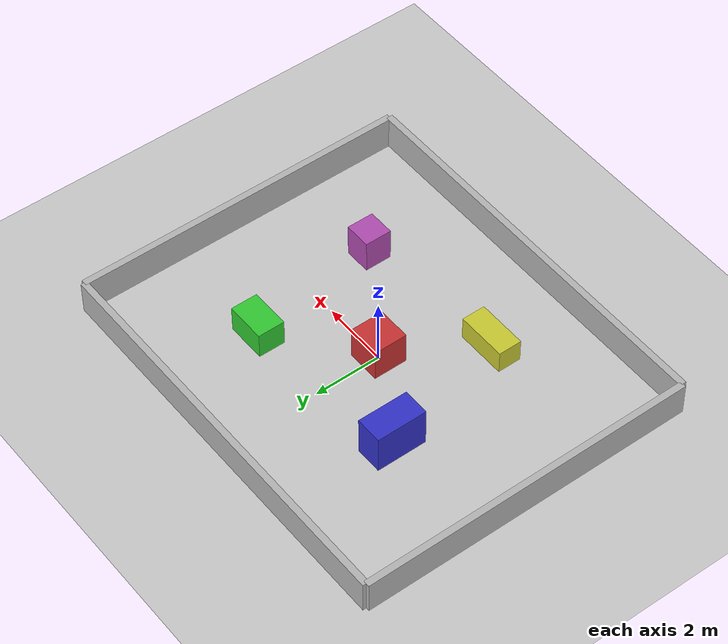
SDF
<?xml version="1.0" ?>
<sdf version="1.6">
  <world name="simple_obstacle_world">

    <include>
      <uri>model://ground_plane</uri>
    </include>

    <include>
      <uri>model://sun</uri>
    </include>

    <!-- 四周边界墙 -->
    <model name="wall_north">
      <static>true</static>
      <pose>0 5 0.5 0 0 0</pose>
      <link name="link">
        <collision name="collision">
          <geometry>
            <box>
              <size>12 0.2 1.0</size>
            </box>
          </geometry>
        </collision>
        <visual name="visual">
          <geometry>
            <box>
              <size>12 0.2 1.0</size>
            </box>
          </geometry>
        </visual>
      </link>
    </model>

    <model name="wall_south">
      <static>true</static>
      <pose>0 -5 0.5 0 0 0</pose>
      <link name="link">
        <collision name="collision">
          <geometry>
            <box>
              <size>12 0.2 1.0</size>
            </box>
          </geometry>
        </collision>
        <visual name="visual">
          <geometry>
            <box>
              <size>12 0.2 1.0</size>
            </box>
          </geometry>
        </visual>
      </link>
    </model>

    <model name="wall_east">
      <static>true</static>
      <pose>6 0 0.5 0 0 0</pose>
      <link name="link">
        <collision name="collision">
          <geometry>
            <box>
              <size>0.2 10 1.0</size>
            </box>
          </geometry>
        </collision>
        <visual name="visual">
          <geometry>
            <box>
              <size>0.2 10 1.0</size>
            </box>
          </geometry>
        </visual>
      </link>
    </model>

    <model name="wall_west">
      <static>true</static>
      <pose>-6 0 0.5 0 0 0</pose>
      <link name="link">
        <collision name="collision">
          <geometry>
            <box>
              <size>0.2 10 1.0</size>
            </box>
          </geometry>
        </collision>
        <visual name="visual">
          <geometry>
            <box>
              <size>0.2 10 1.0</size>
            </box>
          </geometry>
        </visual>
      </link>
    </model>

    <!-- 障碍物 1 -->
    <model name="box_1">
      <static>true</static>
      <pose>0 0 0.5 0 0 0</pose>
      <link name="link">
        <collision name="collision">
          <geometry>
            <box>
              <size>1.0 1.0 1.0</size>
            </box>
          </geometry>
        </collision>
        <visual name="visual">
          <geometry>
            <box>
              <size>1.0 1.0 1.0</size>
            </box>
          </geometry>
          <material>
            <ambient>0.8 0.2 0.2 1</ambient>
            <diffuse>0.8 0.2 0.2 1</diffuse>
          </material>
        </visual>
      </link>
    </model>

    <!-- 障碍物 2 -->
    <model name="box_2">
      <static>true</static>
      <pose>2.5 2 0.4 0 0 0</pose>
      <link name="link">
        <collision name="collision">
          <geometry>
            <box>
              <size>1.2 0.8 0.8</size>
            </box>
          </geometry>
        </collision>
        <visual name="visual">
          <geometry>
            <box>
              <size>1.2 0.8 0.8</size>
            </box>
          </geometry>
          <material>
            <ambient>0.2 0.8 0.2 1</ambient>
            <diffuse>0.2 0.8 0.2 1</diffuse>
          </material>
        </visual>
      </link>
    </model>

    <!-- 障碍物 3 -->
    <model name="box_3">
      <static>true</static>
      <pose>-2.5 1.5 0.6 0 0 0</pose>
      <link name="link">
        <collision name="collision">
          <geometry>
            <box>
              <size>0.8 1.5 1.2</size>
            </box>
          </geometry>
        </collision>
        <visual name="visual">
          <geometry>
            <box>
              <size>0.8 1.5 1.2</size>
            </box>
          </geometry>
          <material>
            <ambient>0.2 0.2 0.8 1</ambient>
            <diffuse>0.2 0.2 0.8 1</diffuse>
          </material>
        </visual>
      </link>
    </model>
    <!-- 障碍物 4 -->
    <model name="box_4">
      <static>true</static>
      <pose>-1.5 -2.5 0.35 0 0 0</pose>
      <link name="link">
        <collision name="collision">
          <geometry>
            <box>
              <size>1.5 0.7 0.7</size>
            </box>
          </geometry>
        </collision>
        <visual name="visual">
          <geometry>
            <box>
              <size>1.5 0.7 0.7</size>
            </box>
          </geometry>
          <material>
            <ambient>0.8 0.8 0.2 1</ambient>
            <diffuse>0.8 0.8 0.2 1</diffuse>
          </material>
        </visual>
      </link>
    </model>

    <!-- 障碍物 5 -->
    <model name="box_5">
      <static>true</static>
      <pose>3 -2 0.5 0 0 0</pose>
      <link name="link">
        <collision name="collision">
          <geometry>
            <box>
              <size>0.8 0.8 1.0</size>
            </box>
          </geometry>
        </collision>
        <visual name="visual">
          <geometry>
            <box>
              <size>0.8 0.8 1.0</size>
            </box>
          </geometry>
          <material>
            <ambient>0.7 0.3 0.7 1</ambient>
            <diffuse>0.7 0.3 0.7 1</diffuse>
          </material>
        </visual>
      </link>
    </model>

  </world>
</sdf>
